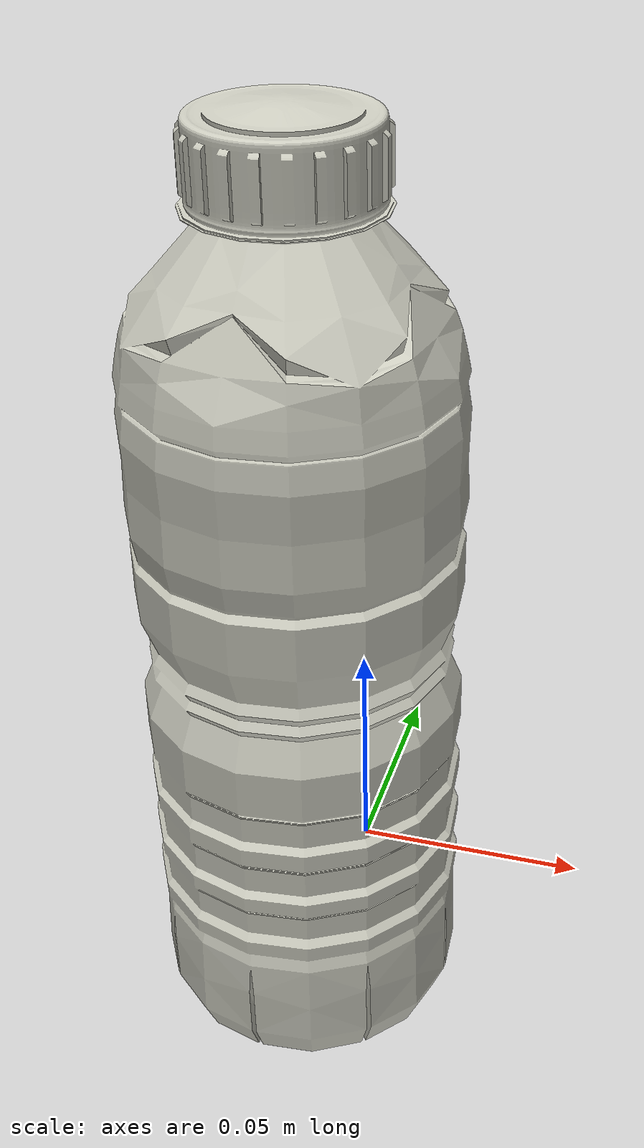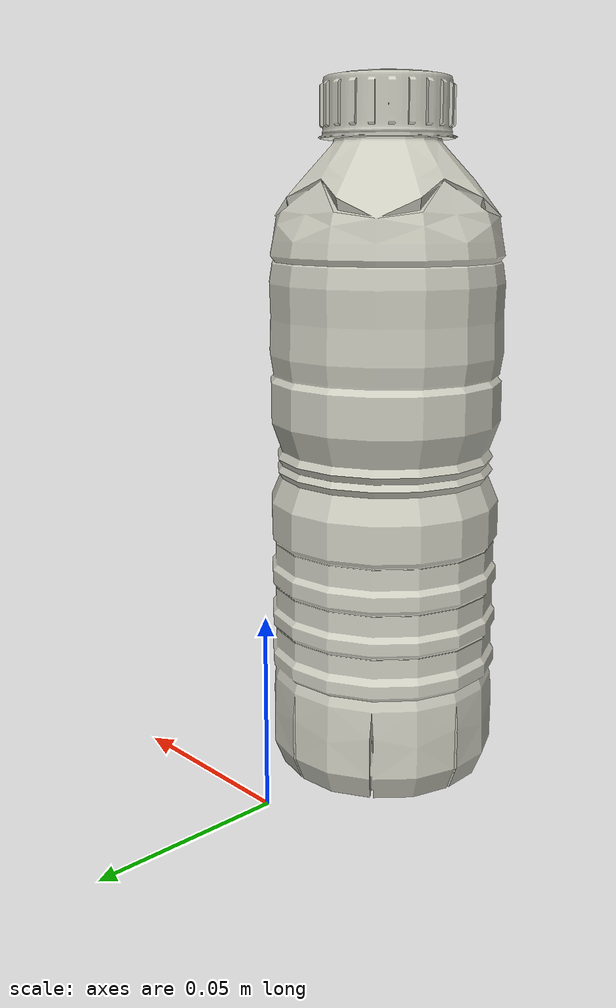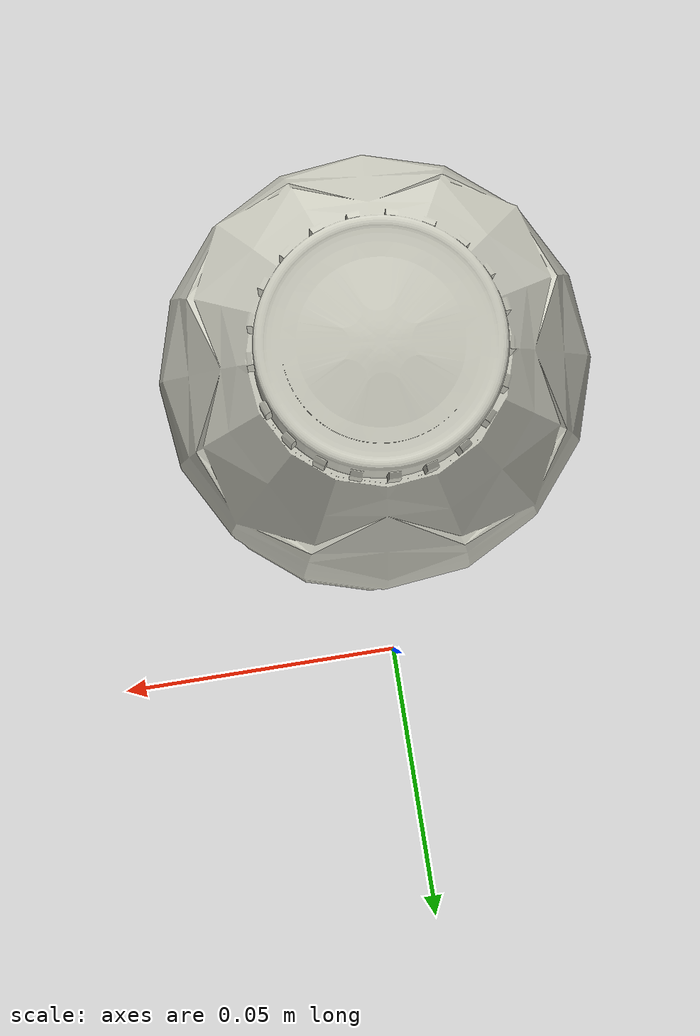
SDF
<sdf version="1.4">
  <model name="bottle">
    <static>0</static>
    <link name="link">
      <inertial>
        <mass>0.25</mass>
        <inertia>
          <ixx>0.000000</ixx>
          <ixy>0.000000</ixy>
          <ixz>0.000000</ixz>
          <iyy>0.000000</iyy>
          <iyz>0.000000</iyz>
          <izz>0.000000</izz>
        </inertia>
      </inertial>
      <collision name="colision1">
        <pose>0 0 0 0 0 0</pose>
        <geometry>
          <mesh>
            <uri>model://bottle/meshes/bottle.dae</uri>
      <scale> 1 1 1 </scale>
          </mesh>
        </geometry>
        <surface>
          <bounce />
          <friction>
            <ode />
          </friction>
          <contact>
            <ode />
          </contact>
        </surface>
      </collision>

      <visual name="visual1">
        <pose>0 0 0 0 0 0</pose>
        <geometry>
          <mesh>
            <uri>model://bottle/meshes/bottle.dae</uri>
      <scale> 1 1 1 </scale>
          </mesh>
        </geometry>
        <material>
          <script>
            <uri>file://media/materials/scripts/gazebo.material</uri>
            <name>Gazebo/PaintedWall</name>
          </script>
        </material>
      </visual>

      <velocity_decay>
        <linear>0.000000</linear>
        <angular>0.000000</angular>
      </velocity_decay>
      <self_collide>0</self_collide>
      <kinematic>0</kinematic>
      <gravity>1</gravity>
    </link>
  </model>
</sdf>
